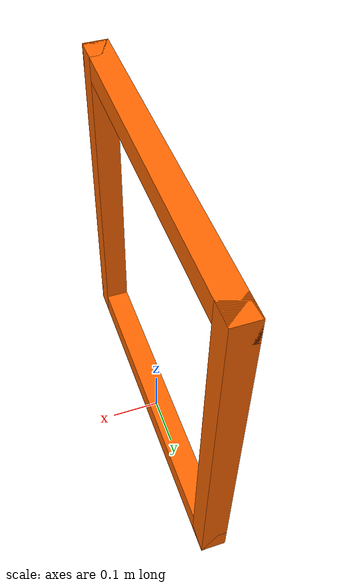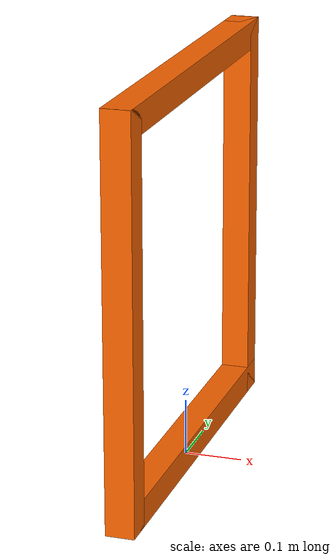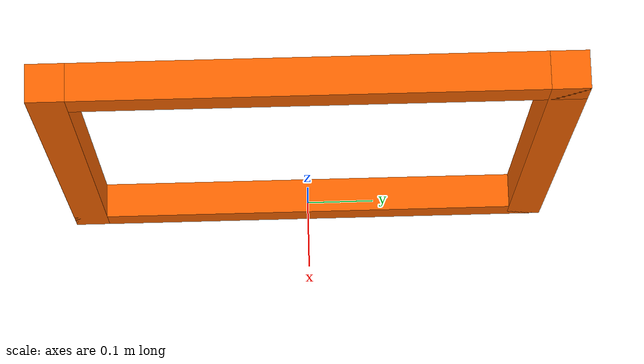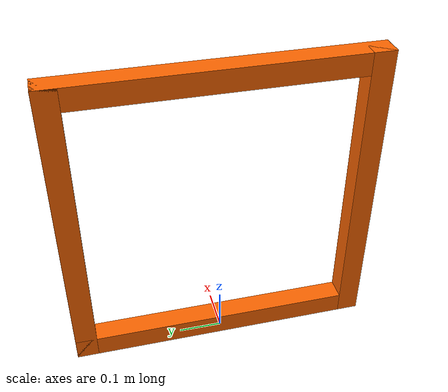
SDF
<?xml version="1.0" ?>
<sdf version="1.9">
  <model name="drone_gate">
    <static>true</static>
    <link name="gate_frame">

      <!-- Left Post -->
      <collision name="left_post_collision">
        <pose>0 0.33 0.355 0 0 0</pose>
        <geometry><box><size>0.05 0.05 0.71</size></box></geometry>
      </collision>
      <visual name="left_post_visual">
        <pose>0 0.33 0.355 0 0 0</pose>
        <geometry><box><size>0.05 0.05 0.71</size></box></geometry>
        <material>
          <ambient>1.0 0.4 0.0 1</ambient>
          <diffuse>1.0 0.4 0.0 1</diffuse>
          <specular>0.2 0.2 0.2 1</specular>
          <emissive>0.8 0.3 0.0 1</emissive>
        </material>
      </visual>

      <!-- Right Post -->
      <collision name="right_post_collision">
        <pose>0 -0.33 0.355 0 0 0</pose>
        <geometry><box><size>0.05 0.05 0.71</size></box></geometry>
      </collision>
      <visual name="right_post_visual">
        <pose>0 -0.33 0.355 0 0 0</pose>
        <geometry><box><size>0.05 0.05 0.71</size></box></geometry>
        <material>
          <ambient>1.0 0.4 0.0 1</ambient>
          <diffuse>1.0 0.4 0.0 1</diffuse>
          <specular>0.2 0.2 0.2 1</specular>
          <emissive>0.8 0.3 0.0 1</emissive>
        </material>
      </visual>

      <!-- Top Bar -->
      <collision name="top_bar_collision">
        <pose>0 0 0.685 0 0 0</pose>
        <geometry><box><size>0.05 0.71 0.05</size></box></geometry>
      </collision>
      <visual name="top_bar_visual">
        <pose>0 0 0.685 0 0 0</pose>
        <geometry><box><size>0.05 0.71 0.05</size></box></geometry>
        <material>
          <ambient>1.0 0.4 0.0 1</ambient>
          <diffuse>1.0 0.4 0.0 1</diffuse>
          <specular>0.2 0.2 0.2 1</specular>
          <emissive>0.8 0.3 0.0 1</emissive>
        </material>
      </visual>

      <!-- Bottom Bar -->
      <collision name="bottom_bar_collision">
        <pose>0 0 0.025 0 0 0</pose>
        <geometry><box><size>0.05 0.71 0.05</size></box></geometry>
      </collision>
      <visual name="bottom_bar_visual">
        <pose>0 0 0.025 0 0 0</pose>
        <geometry><box><size>0.05 0.71 0.05</size></box></geometry>
        <material>
          <ambient>1.0 0.4 0.0 1</ambient>
          <diffuse>1.0 0.4 0.0 1</diffuse>
          <specular>0.2 0.2 0.2 1</specular>
          <emissive>0.8 0.3 0.0 1</emissive>
        </material>
      </visual>

    </link>
  </model>
</sdf>
